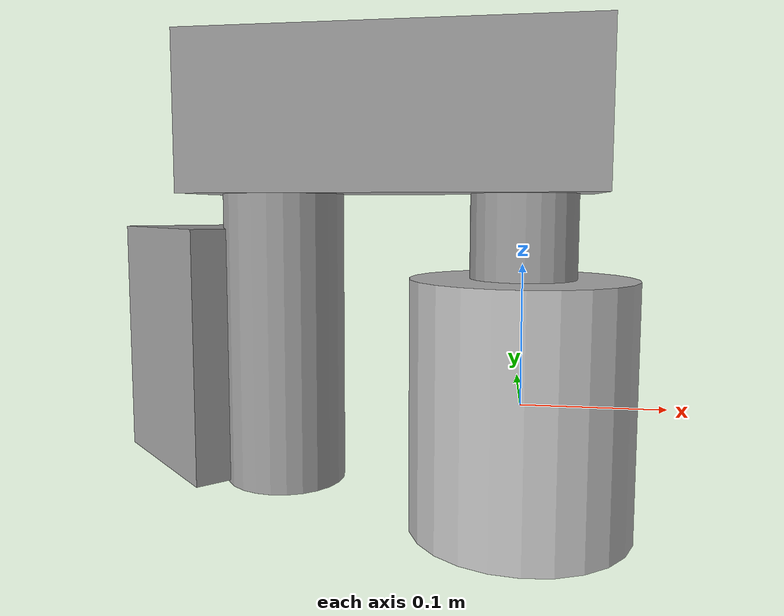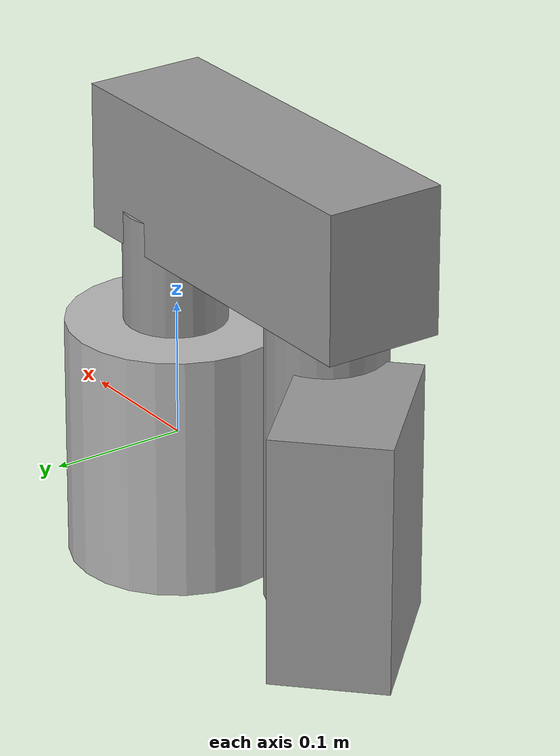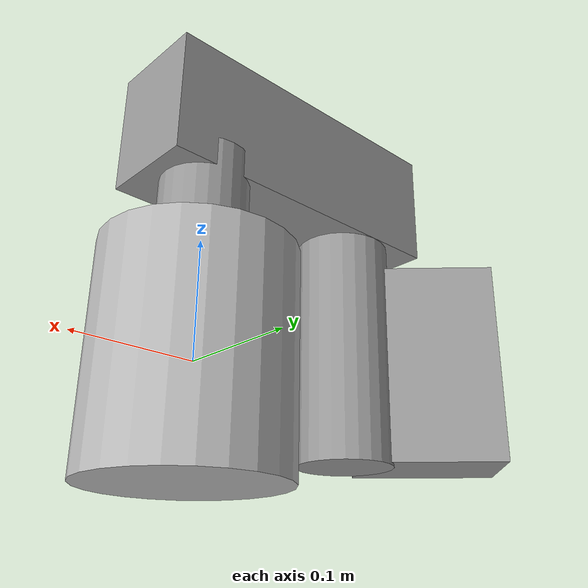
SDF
<?xml version='1.0'?>
<sdf version='1.6'>
  <model name='tuba'>
    <link name='link'>
      <inertial>
        <mass>0.00413882</mass>
        <inertia>
          <ixx>1.58488e-05</ixx>
          <ixy>0</ixy>
          <ixz>0</ixz>
          <iyy>1.58488e-05</iyy>
          <iyz>0</iyz>
          <izz>1.30403e-05</izz>
        </inertia>
        <pose frame=''>0 0 0 0 -0 0</pose>
      </inertial>
      <self_collide>0</self_collide>
      <enable_wind>0</enable_wind>
      <kinematic>1</kinematic>
      <pose frame=''>0 0 0 0 -0 0</pose>
      <visual name='visual'>
        <geometry>
          <cylinder>
            <radius>0.0793816</radius>
            <length>0.18</length>
          </cylinder>
        </geometry>
        <pose frame=''>0 0 0 0 -0 0</pose>
        <transparency>0</transparency>
        <cast_shadows>1</cast_shadows>
      </visual>
      <collision name='collision'>
        <laser_retro>0</laser_retro>
        <max_contacts>10</max_contacts>
        <pose frame=''>0 0 0 0 -0 0</pose>
        <geometry>
          <cylinder>
            <radius>0.079382</radius>
            <length>0.18</length>
          </cylinder>
        </geometry>
        <surface>
          <friction>
            <ode>
              <mu>1</mu>
              <mu2>1</mu2>
              <fdir1>0 0 0</fdir1>
              <slip1>0</slip1>
              <slip2>0</slip2>
            </ode>
            <torsional>
              <coefficient>1</coefficient>
              <patch_radius>0</patch_radius>
              <surface_radius>0</surface_radius>
              <use_patch_radius>1</use_patch_radius>
              <ode>
                <slip>0</slip>
              </ode>
            </torsional>
          </friction>
          <bounce>
            <restitution_coefficient>0</restitution_coefficient>
            <threshold>1e+06</threshold>
          </bounce>
          <contact>
            <collide_without_contact>0</collide_without_contact>
            <collide_without_contact_bitmask>1</collide_without_contact_bitmask>
            <collide_bitmask>1</collide_bitmask>
            <ode>
              <soft_cfm>0</soft_cfm>
              <soft_erp>0.2</soft_erp>
              <kp>1e+13</kp>
              <kd>1</kd>
              <max_vel>0.01</max_vel>
              <min_depth>0</min_depth>
            </ode>
            <bullet>
              <split_impulse>1</split_impulse>
              <split_impulse_penetration_threshold>-0.01</split_impulse_penetration_threshold>
              <soft_cfm>0</soft_cfm>
              <soft_erp>0.2</soft_erp>
              <kp>1e+13</kp>
              <kd>1</kd>
            </bullet>
          </contact>
        </surface>
      </collision>
    </link>
    <link name='link_0'>
      <kinematic>1</kinematic>
      <inertial>
        <mass>0.000593634</mass>
        <inertia>
          <ixx>7.68187e-07</ixx>
          <ixy>0</ixy>
          <ixz>0</ixz>
          <iyy>7.68187e-07</iyy>
          <iyz>0</iyz>
          <izz>4.10935e-07</izz>
        </inertia>
        <pose frame=''>0 0 0 0 -0 0</pose>
      </inertial>
      <pose frame=''>0.000411 0.000661 0.120501 0 -0 0</pose>
      <visual name='visual'>
        <pose frame=''>0 0 0 0 -0 0</pose>
        <geometry>
          <cylinder>
            <radius>0.0372085</radius>
            <length>0.106654</length>
          </cylinder>
        </geometry>
        <material>
          <lighting>1</lighting>
          <script>
            <uri>file://media/materials/scripts/gazebo.material</uri>
            <name>Gazebo/Grey</name>
          </script>
          <shader type='pixel'/>
        </material>
        <transparency>0</transparency>
        <cast_shadows>1</cast_shadows>
      </visual>
      <collision name='collision'>
        <laser_retro>0</laser_retro>
        <max_contacts>10</max_contacts>
        <pose frame=''>0 0 0 0 -0 0</pose>
        <geometry>
          <cylinder>
            <radius>0.037208</radius>
            <length>0.106654</length>
          </cylinder>
        </geometry>
        <surface>
          <friction>
            <ode>
              <mu>1</mu>
              <mu2>1</mu2>
              <fdir1>0 0 0</fdir1>
              <slip1>0</slip1>
              <slip2>0</slip2>
            </ode>
            <torsional>
              <coefficient>1</coefficient>
              <patch_radius>0</patch_radius>
              <surface_radius>0</surface_radius>
              <use_patch_radius>1</use_patch_radius>
              <ode>
                <slip>0</slip>
              </ode>
            </torsional>
          </friction>
          <bounce>
            <restitution_coefficient>0</restitution_coefficient>
            <threshold>1e+06</threshold>
          </bounce>
          <contact>
            <collide_without_contact>0</collide_without_contact>
            <collide_without_contact_bitmask>1</collide_without_contact_bitmask>
            <collide_bitmask>1</collide_bitmask>
            <ode>
              <soft_cfm>0</soft_cfm>
              <soft_erp>0.2</soft_erp>
              <kp>1e+13</kp>
              <kd>1</kd>
              <max_vel>0.01</max_vel>
              <min_depth>0</min_depth>
            </ode>
            <bullet>
              <split_impulse>1</split_impulse>
              <split_impulse_penetration_threshold>-0.01</split_impulse_penetration_threshold>
              <soft_cfm>0</soft_cfm>
              <soft_erp>0.2</soft_erp>
              <kp>1e+13</kp>
              <kd>1</kd>
            </bullet>
          </contact>
        </surface>
      </collision>
    </link>
    <link name='link_1'>
      <kinematic>1</kinematic>
      <inertial>
        <mass>0.00172403</mass>
        <inertia>
          <ixx>8.73414e-06</ixx>
          <ixy>0</ixy>
          <ixz>0</ixz>
          <iyy>8.73414e-06</iyy>
          <iyz>0</iyz>
          <izz>1.57399e-06</izz>
        </inertia>
        <pose frame=''>0 0 0 0 -0 0</pose>
      </inertial>
      <pose frame=''>-0.168879 -0.007855 0.060679 0 -0 0</pose>
      <visual name='visual'>
        <pose frame=''>0 0 0 0 -0 0</pose>
        <geometry>
          <cylinder>
            <radius>0.0427311</radius>
            <length>0.235193</length>
          </cylinder>
        </geometry>
        <material>
          <lighting>1</lighting>
          <script>
            <uri>file://media/materials/scripts/gazebo.material</uri>
            <name>Gazebo/Grey</name>
          </script>
          <shader type='pixel'/>
        </material>
        <transparency>0</transparency>
        <cast_shadows>1</cast_shadows>
      </visual>
      <collision name='collision'>
        <laser_retro>0</laser_retro>
        <max_contacts>10</max_contacts>
        <pose frame=''>0 0 0 0 -0 0</pose>
        <geometry>
          <cylinder>
            <radius>0.042731</radius>
            <length>0.235193</length>
          </cylinder>
        </geometry>
        <surface>
          <friction>
            <ode>
              <mu>1</mu>
              <mu2>1</mu2>
              <fdir1>0 0 0</fdir1>
              <slip1>0</slip1>
              <slip2>0</slip2>
            </ode>
            <torsional>
              <coefficient>1</coefficient>
              <patch_radius>0</patch_radius>
              <surface_radius>0</surface_radius>
              <use_patch_radius>1</use_patch_radius>
              <ode>
                <slip>0</slip>
              </ode>
            </torsional>
          </friction>
          <bounce>
            <restitution_coefficient>0</restitution_coefficient>
            <threshold>1e+06</threshold>
          </bounce>
          <contact>
            <collide_without_contact>0</collide_without_contact>
            <collide_without_contact_bitmask>1</collide_without_contact_bitmask>
            <collide_bitmask>1</collide_bitmask>
            <ode>
              <soft_cfm>0</soft_cfm>
              <soft_erp>0.2</soft_erp>
              <kp>1e+13</kp>
              <kd>1</kd>
              <max_vel>0.01</max_vel>
              <min_depth>0</min_depth>
            </ode>
            <bullet>
              <split_impulse>1</split_impulse>
              <split_impulse_penetration_threshold>-0.01</split_impulse_penetration_threshold>
              <soft_cfm>0</soft_cfm>
              <soft_erp>0.2</soft_erp>
              <kp>1e+13</kp>
              <kd>1</kd>
            </bullet>
          </contact>
        </surface>
      </collision>
    </link>
    <link name='link_2'>
      <kinematic>1</kinematic>
      <inertial>
        <mass>0.002696</mass>
        <inertia>
          <ixx>4.35687e-06</ixx>
          <ixy>0</ixy>
          <ixz>0</ixz>
          <iyy>2.05296e-05</iyy>
          <iyz>0</iyz>
          <izz>1.96909e-05</izz>
        </inertia>
        <pose frame=''>0 0 0 0 -0 0</pose>
      </inertial>
      <pose frame=''>-0.090153 -0.009146 0.202809 0 -0 0</pose>
      <visual name='visual'>
        <pose frame=''>0 0 0 0 -0 0</pose>
        <geometry>
          <box>
            <size>0.282516 0.088486 0.10753</size>
          </box>
        </geometry>
        <material>
          <lighting>1</lighting>
          <script>
            <uri>file://media/materials/scripts/gazebo.material</uri>
            <name>Gazebo/Grey</name>
          </script>
          <shader type='pixel'/>
        </material>
        <transparency>0</transparency>
        <cast_shadows>1</cast_shadows>
      </visual>
      <collision name='collision'>
        <laser_retro>0</laser_retro>
        <max_contacts>10</max_contacts>
        <pose frame=''>0 0 0 0 -0 0</pose>
        <geometry>
          <box>
            <size>0.282516 0.088486 0.10753</size>
          </box>
        </geometry>
        <surface>
          <friction>
            <ode>
              <mu>1</mu>
              <mu2>1</mu2>
              <fdir1>0 0 0</fdir1>
              <slip1>0</slip1>
              <slip2>0</slip2>
            </ode>
            <torsional>
              <coefficient>1</coefficient>
              <patch_radius>0</patch_radius>
              <surface_radius>0</surface_radius>
              <use_patch_radius>1</use_patch_radius>
              <ode>
                <slip>0</slip>
              </ode>
            </torsional>
          </friction>
          <bounce>
            <restitution_coefficient>0</restitution_coefficient>
            <threshold>1e+06</threshold>
          </bounce>
          <contact>
            <collide_without_contact>0</collide_without_contact>
            <collide_without_contact_bitmask>1</collide_without_contact_bitmask>
            <collide_bitmask>1</collide_bitmask>
            <ode>
              <soft_cfm>0</soft_cfm>
              <soft_erp>0.2</soft_erp>
              <kp>1e+13</kp>
              <kd>1</kd>
              <max_vel>0.01</max_vel>
              <min_depth>0</min_depth>
            </ode>
            <bullet>
              <split_impulse>1</split_impulse>
              <split_impulse_penetration_threshold>-0.01</split_impulse_penetration_threshold>
              <soft_cfm>0</soft_cfm>
              <soft_erp>0.2</soft_erp>
              <kp>1e+13</kp>
              <kd>1</kd>
            </bullet>
          </contact>
        </surface>
      </collision>
    </link>
    <link name='link_3'>
      <kinematic>1</kinematic>
      <inertial>
        <mass>0.00196139</mass>
        <inertia>
          <ixx>6.40609e-06</ixx>
          <ixy>0</ixy>
          <ixz>0</ixz>
          <iyy>8.09039e-06</iyy>
          <iyz>0</iyz>
          <izz>3.94962e-06</izz>
        </inertia>
        <pose frame=''>0 0 0 0 -0 0</pose>
      </inertial>
      <pose frame=''>-0.238843 0.026108 0.034887 0 0 -0.794043</pose>
      <visual name='visual'>
        <pose frame=''>0 0 0 0 -0 0</pose>
        <geometry>
          <box>
            <size>0.13128 0.083245 0.17962</size>
          </box>
        </geometry>
        <material>
          <lighting>1</lighting>
          <script>
            <uri>file://media/materials/scripts/gazebo.material</uri>
            <name>Gazebo/Grey</name>
          </script>
          <shader type='pixel'/>
        </material>
        <transparency>0</transparency>
        <cast_shadows>1</cast_shadows>
      </visual>
      <collision name='collision'>
        <laser_retro>0</laser_retro>
        <max_contacts>10</max_contacts>
        <pose frame=''>0 0 0 0 -0 0</pose>
        <geometry>
          <box>
            <size>0.13128 0.083245 0.17962</size>
          </box>
        </geometry>
        <surface>
          <friction>
            <ode>
              <mu>1</mu>
              <mu2>1</mu2>
              <fdir1>0 0 0</fdir1>
              <slip1>0</slip1>
              <slip2>0</slip2>
            </ode>
            <torsional>
              <coefficient>1</coefficient>
              <patch_radius>0</patch_radius>
              <surface_radius>0</surface_radius>
              <use_patch_radius>1</use_patch_radius>
              <ode>
                <slip>0</slip>
              </ode>
            </torsional>
          </friction>
          <bounce>
            <restitution_coefficient>0</restitution_coefficient>
            <threshold>1e+06</threshold>
          </bounce>
          <contact>
            <collide_without_contact>0</collide_without_contact>
            <collide_without_contact_bitmask>1</collide_without_contact_bitmask>
            <collide_bitmask>1</collide_bitmask>
            <ode>
              <soft_cfm>0</soft_cfm>
              <soft_erp>0.2</soft_erp>
              <kp>1e+13</kp>
              <kd>1</kd>
              <max_vel>0.01</max_vel>
              <min_depth>0</min_depth>
            </ode>
            <bullet>
              <split_impulse>1</split_impulse>
              <split_impulse_penetration_threshold>-0.01</split_impulse_penetration_threshold>
              <soft_cfm>0</soft_cfm>
              <soft_erp>0.2</soft_erp>
              <kp>1e+13</kp>
              <kd>1</kd>
            </bullet>
          </contact>
        </surface>
      </collision>
    </link>
    <static>0</static>
    <allow_auto_disable>1</allow_auto_disable>
  </model>
</sdf>
